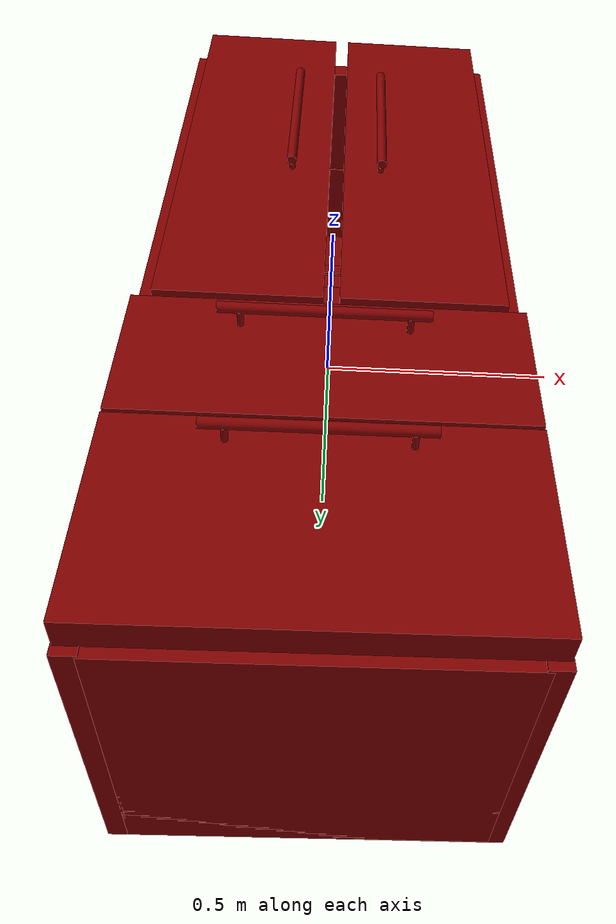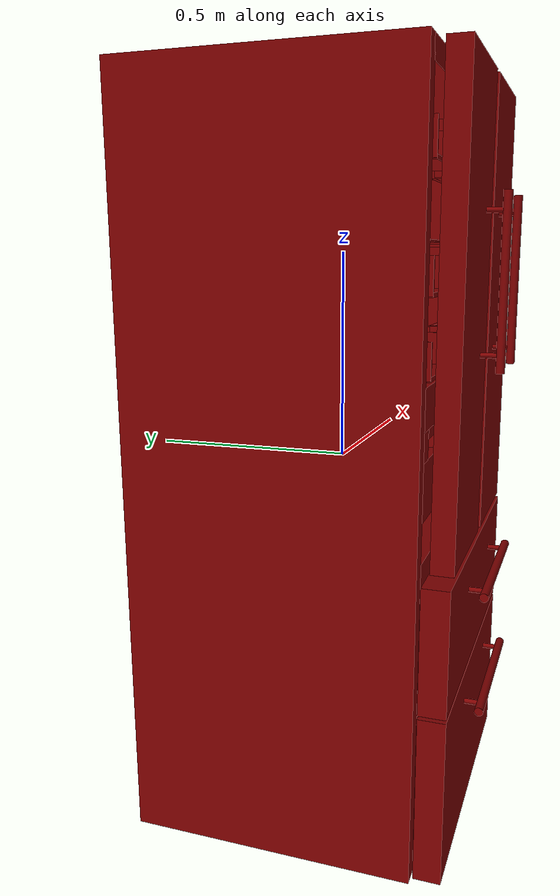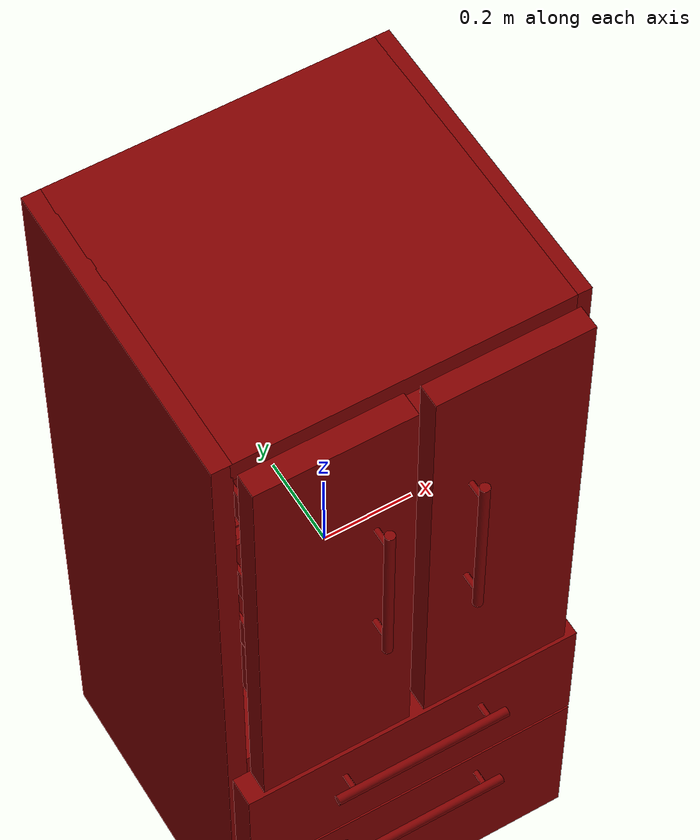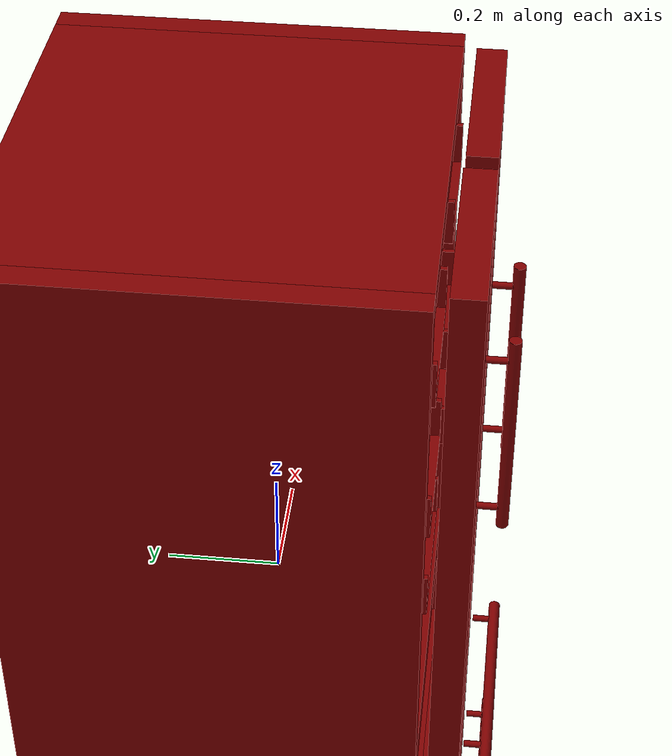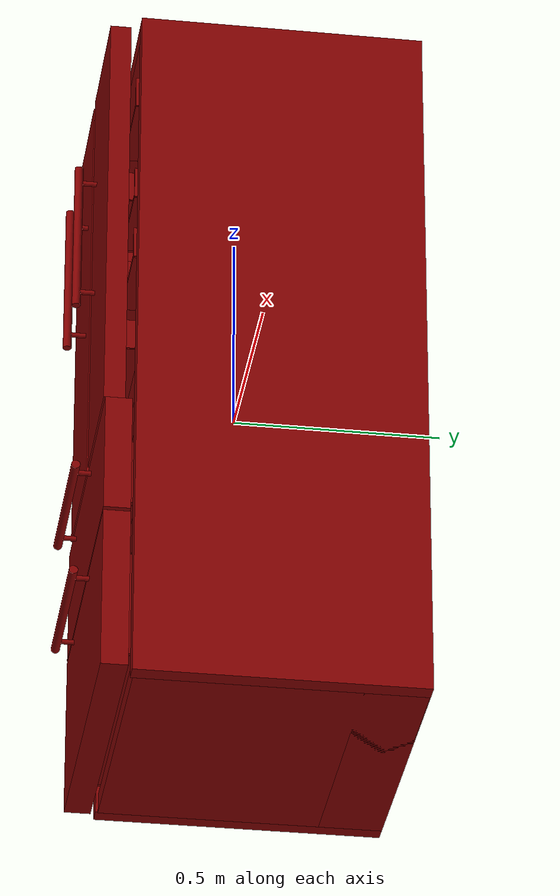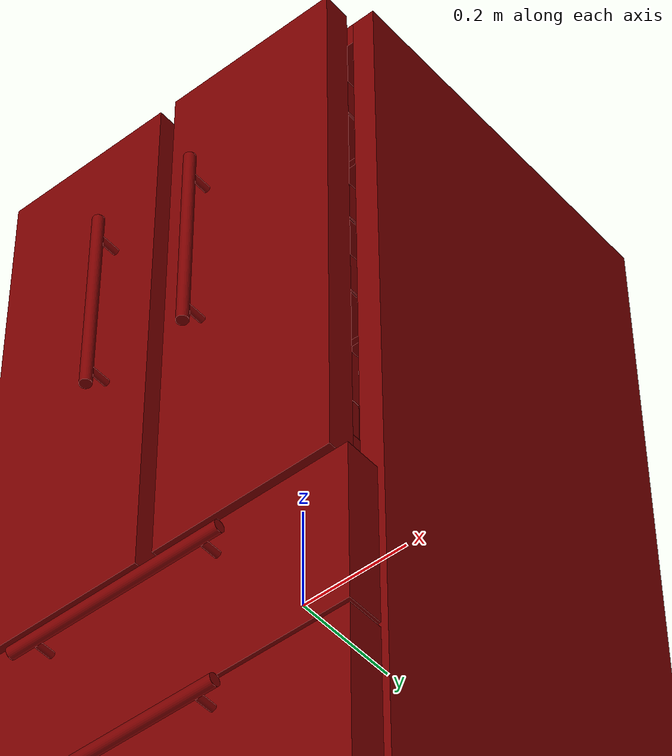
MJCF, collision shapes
<?xml version='1.0' encoding='UTF-8'?>
<mujoco model="model">
  <option timestep="0.002" gravity="0.0 0.0 -9.81"/>
  <compiler angle="radian"/>
  <asset>
    <mesh file="visuals/freezer0.obj" name="freezer0_vis"/>
    <mesh file="visuals/freezer1.obj" name="freezer1_vis"/>
    <mesh file="visuals/fridge_drawer0.obj" name="fridge_drawer0_vis"/>
    <mesh file="visuals/fridge_left_door.obj" name="fridge_left_door_vis"/>
    <mesh file="visuals/fridge_left_door_Clear.obj" name="fridge_left_door_Clear_vis"/>
    <mesh file="visuals/fridge_right_door.obj" name="fridge_right_door_vis"/>
    <mesh file="visuals/fridge_right_door_Clear.obj" name="fridge_right_door_Clear_vis"/>
    <mesh file="visuals/Body001.obj" name="Body001_vis"/>
    <mesh file="visuals/Body001_Clear.obj" name="Body001_Clear_vis"/>
    <texture file="visuals/T_BC001.png" name="Body001_material" type="2d"/>
    <material name="Body001_material" rgba="1 1 1 1.0" texture="Body001_material" shininess="0.141421377658844" specular="5"/>
    <texture file="visuals/T_BC001.png" name="freezer0_material" type="2d"/>
    <material name="freezer0_material" rgba="1 1 1 1.0" texture="freezer0_material" shininess="0.141421377658844" specular="5"/>
    <texture file="visuals/T_BC001.png" name="freezer1_material" type="2d"/>
    <material name="freezer1_material" rgba="1 1 1 1.0" texture="freezer1_material" shininess="0.141421377658844" specular="5"/>
    <texture file="visuals/T_BC001.png" name="fridge_drawer0_material" type="2d"/>
    <material name="fridge_drawer0_material" rgba="1 1 1 1.0" texture="fridge_drawer0_material" shininess="0.141421377658844" specular="5"/>
    <texture file="visuals/T_BC001.png" name="fridge_left_door_material" type="2d"/>
    <material name="fridge_left_door_material" rgba="1 1 1 1.0" texture="fridge_left_door_material" shininess="0.141421377658844" specular="5"/>
    <material name="fridge_left_door_Clear_material" rgba="0.5882353186607361 0.5882353186607361 0.5882353186607361 0.699999988079071" shininess="0.141421377658844" specular="0.3103448502657381"/>
    <texture file="visuals/T_BC001.png" name="fridge_right_door_material" type="2d"/>
    <material name="fridge_right_door_material" rgba="1 1 1 1.0" texture="fridge_right_door_material" shininess="0.141421377658844" specular="5"/>
    <material name="fridge_right_door_Clear_material" rgba="0.5882353186607361 0.5882353186607361 0.5882353186607361 0.699999988079071" shininess="0.141421377658844" specular="0.3103448502657381"/>
    <material name="Body001_Clear_material" rgba="0.5882353186607361 0.5882353186607361 0.5882353186607361 0.699999988079071" shininess="0.141421377658844" specular="0.3103448502657381"/>
  </asset>
  <default>
    <default class="visual">
      <geom conaffinity="0" contype="0" group="1" type="mesh"/>
    </default>
    <default class="collision">
      <geom group="0" rgba="0.5 0 0 0.5"/>
    </default>
    <default class="spawn">
      <geom group="0" rgba="1 1 1 0.5" contype="0" conaffinity="0"/>
      <site group="0" rgba="1 1 1 0.5"/>
    </default>
    <default class="region">
      <geom group="1" conaffinity="0" contype="0" rgba="0 1 0 0"/>
    </default>
  </default>
  <worldbody>
    <body>
      <body name="object">
        <geom mesh="Body001_vis" type="mesh" solimp="0.998 0.998 0.001" solref="0.001 1" friction="0.95 0.3 0.1" class="visual" material="Body001_material"/>
        <geom class="collision" type="box" pos="-0.36152868 0.06350708 0.00000004" size="0.020895235240459442 0.3423071503639221 0.8903815150260925" quat="1.0 0.0 0.0 0.0"/>
        <geom class="collision" type="box" pos="0.00344825 0.32958353 -0.02222050" size="0.3488938808441162 0.0762307196855545 0.8681609630584717" quat="1.0 0.0 0.0 0.0"/>
        <geom class="collision" type="box" pos="0.36138396 0.06350708 0.00000004" size="0.021036408841609955 0.3423071503639221 0.8903815150260925" quat="1.0 0.0 0.0 0.0"/>
        <geom class="collision" type="box" pos="0.00344825 0.06350708 0.86597389" size="0.3488938808441162 0.3423071503639221 0.02440752275288105" quat="1.0 0.0 0.0 0.0"/>
        <geom class="collision" type="box" pos="0.00344825 0.04003861 0.52877045" size="0.3488938808441162 0.22664538025856018 0.002512902719900012" quat="1.0 0.0 0.0 0.0"/>
        <geom class="collision" type="box" pos="0.00344825 0.04007300 0.19491111" size="0.3488938808441162 0.22667978703975677 0.0025128580164164305" quat="1.0 0.0 0.0 0.0"/>
        <geom class="collision" type="box" pos="0.00344825 0.06426792 -0.19484323" size="0.3488938808441162 0.34017038345336914 0.04420214518904686" quat="1.0 0.0 0.0 0.0"/>
        <geom class="collision" type="box" pos="0.00344825 0.06575833 -0.49197859" size="0.3488938808441162 0.3386799693107605 0.044169098138809204" quat="1.0 0.0 0.0 0.0"/>
        <geom class="collision" type="box" pos="0.00344825 0.06564751 -0.86693072" size="0.3488938808441162 0.33856913447380066 0.02345077507197857" quat="1.0 0.0 0.0 0.0"/>
        <geom class="collision" type="box" pos="0.33671196 0.10610183 0.18464710" size="0.015630198642611504 0.2983231842517853 0.003954083658754826" quat="1.0 0.0 0.0 0.0"/>
        <geom class="collision" type="box" pos="-0.33772982 0.10610183 0.18464710" size="0.015630198642611504 0.2983231842517853 0.003954083658754826" quat="1.0 0.0 0.0 0.0"/>
        <geom class="collision" type="box" pos="0.33671196 0.10606744 0.51825857" size="0.015630198642611504 0.29828882217407227 0.003954083658754826" quat="1.0 0.0 0.0 0.0"/>
        <geom class="collision" type="box" pos="-0.33772982 0.10606744 0.51825857" size="0.015630198642611504 0.29828882217407227 0.003954083658754826" quat="1.0 0.0 0.0 0.0"/>
        <body name="freezer0">
          <geom class="region" name="reg_freezer0" type="box" pos="-0.0004010500000000139 -0.044268064999999995 -0.6914894549999999" size="0.31518921 0.232760775 0.11752159499999998"/>
          <joint axis="0.0 -1.0 0.0" pos="0.00006209 -0.09910394 -0.67936808" limited="true" name="freezer0_door_joint" range="0.0 0.4" type="slide" damping="1" frictionloss="1" armature=".01" stiffness="0.05"/>
          <geom mesh="freezer0_vis" type="mesh" solimp="0.998 0.998 0.001" solref="0.001 1" friction="0.95 0.3 0.1" class="visual" material="freezer0_material"/>
          <geom class="collision" type="box" pos="0.00185137 -0.05699740 -0.82058871" size="0.32403823733329773 0.25006794929504395 0.006704666651785374" quat="1.0 0.0 0.0 0.0"/>
          <geom class="collision" type="box" pos="-0.32790802 -0.05699740 -0.69763881" size="0.007267894223332405 0.25006794929504395 0.12790319323539734" quat="1.0 0.0 0.0 0.0"/>
          <geom class="collision" type="box" pos="0.32664417 -0.05699740 -0.69763881" size="0.007267918903380632 0.25006794929504395 0.12790319323539734" quat="1.0 0.0 0.0 0.0"/>
          <geom class="collision" type="box" pos="-0.00046618 0.20033851 -0.69763875" size="0.3342480957508087 0.0072679584845900536 0.12790320813655853" quat="1.0 0.0 0.0 0.0"/>
          <geom class="collision" type="cylinder" pos="0.14917012 -0.37454274 -0.53792489" size="0.005949943792074919 0.01835515722632408" quat="0.7071067094802856 0.7071068286895752 0.0 0.0" name="freezer0_door_handle_2"/>
          <geom class="collision" type="cylinder" pos="-0.16305157 -0.37454274 -0.53792489" size="0.005949943792074919 0.01835515722632408" quat="0.7071067094802856 0.7071068286895752 0.0 0.0" name="freezer0_door_handle_1"/>
          <geom class="collision" type="cylinder" pos="-0.00903055 -0.39620686 -0.53743720" size="0.010426044464111328 0.1963866651058197" quat="0.7071068286895752 -0.0 0.7071067690849304 0.0" name="freezer0_door_handle_main"/>
          <geom class="collision" type="box" pos="-0.00018756 -0.31854659 -0.68015015" size="0.3769320249557495 0.031620871275663376 0.19834721088409424" quat="1.0 0.0 0.0 0.0" name="freezer0_door_main"/>
        </body>
        <body name="freezer1">
          <geom class="region" name="reg_freezer1" type="box" pos="0.000929490000000005 -0.031743035 -0.34979051" size="0.31874628000000005 0.244452955 0.06920779999999999"/>
          <joint axis="0.0 -1.0 0.0" pos="0.00006877 -0.08697075 -0.32639688" limited="true" name="freezer1_door_joint" range="0.0 0.4" type="slide" damping="1" frictionloss="1" armature=".01" stiffness="0.05"/>
          <geom mesh="freezer1_vis" type="mesh" solimp="0.998 0.998 0.001" solref="0.001 1" friction="0.95 0.3 0.1" class="visual" material="freezer1_material"/>
          <geom class="collision" type="box" pos="-0.00018756 -0.31854659 -0.32750550" size="0.3769320249557495 0.031620871275663376 0.1460256427526474" quat="1.0 0.0 0.0 0.0" name="freezer1_door_main"/>
          <geom class="collision" type="cylinder" pos="-0.00903055 -0.39620686 -0.25623894" size="0.010426044464111328 0.1963866651058197" quat="0.7071068286895752 -0.0 0.7071067690849304 0.0" name="freezer1_door_handle_main"/>
          <geom class="collision" type="cylinder" pos="-0.16305157 -0.37454274 -0.25672662" size="0.005949943792074919 0.01835515722632408" quat="0.7071067094802856 0.7071068286895752 0.0 0.0" name="freezer1_door_handle_1"/>
          <geom class="collision" type="cylinder" pos="0.14917012 -0.37454274 -0.25672662" size="0.005949943792074919 0.01835515722632408" quat="0.7071067094802856 0.7071068286895752 0.0 0.0" name="freezer1_door_handle_2"/>
          <geom class="collision" type="box" pos="0.00102142 0.22460476 -0.35598218" size="0.33801165223121643 0.007267870008945465 0.07988136261701584" quat="1.0 0.0 0.0 0.0"/>
          <geom class="collision" type="box" pos="0.33176519 -0.04486424 -0.35598218" size="0.007267908658832312 0.26220113039016724 0.07988136261701584" quat="1.0 0.0 0.0 0.0"/>
          <geom class="collision" type="box" pos="-0.32972236 -0.03759637 -0.35598224" size="0.007267878390848637 0.2694689929485321 0.07988130301237106" quat="1.0 0.0 0.0 0.0"/>
          <geom class="collision" type="box" pos="0.00102140 -0.04486425 -0.43048826" size="0.3234758675098419 0.26220110058784485 0.006704667117446661" quat="1.0 0.0 0.0 0.0"/>
        </body>
        <body name="fridge_drawer0">
          <geom class="region" name="reg_fridge_drawer0" type="box" pos="-0.001885219999999993 0.012568780000000002 0.026459695000000005" size="0.25517051 0.20365014 0.128449005"/>
          <joint axis="0.0 -1.0 0.0" pos="-0.00240436 0.00109385 0.03048827" limited="true" name="fridge_drawer0_joint" range="0.0 0.4" type="slide" damping="1" frictionloss="1" armature=".01" stiffness="0.05"/>
          <geom mesh="fridge_drawer0_vis" type="mesh" solimp="0.998 0.998 0.001" solref="0.001 1" friction="0.95 0.3 0.1" class="visual" material="fridge_drawer0_material"/>
          <geom class="collision" type="box" pos="-0.00150819 -0.21325396 0.14007315" size="0.276522159576416 0.015158834867179394 0.052633244544267654" quat="1.0 0.0 0.0 0.0"/>
          <geom class="collision" type="box" pos="-0.00205876 0.01185571 -0.11235271" size="0.26096388697624207 0.21130329370498657 0.004161866847425699" quat="1.0 0.0 0.0 0.0"/>
          <geom class="collision" type="box" pos="0.00061929 0.22685051 0.02384637" size="0.2611366808414459 0.00556489173322916 0.13526754081249237" quat="1.0 0.0 0.0 0.0"/>
          <geom class="collision" type="box" pos="-0.26857425 0.01427198 0.02384639" size="0.005672972183674574 0.2138131856918335 0.13526758551597595" quat="1.0 0.0 0.0 0.0"/>
          <geom class="collision" type="box" pos="0.26479937 0.01997739 0.02384639" size="0.005672989413142204 0.21951988339424133 0.13526760041713715" quat="1.0 0.0 0.0 0.0"/>
          <geom class="collision" type="box" pos="-0.00150819 -0.21256335 -0.06067566" size="0.2765568494796753 0.015851689502596855 0.07450446486473083" quat="1.0 0.0 0.0 0.0"/>
          <geom class="collision" type="box" pos="-0.16119037 -0.21325396 0.04907792" size="0.11688061058521271 0.015161125920712948 0.03786835819482803" quat="1.0 0.0 0.0 0.0"/>
          <geom class="collision" type="box" pos="0.18151224 -0.21325396 0.04907792" size="0.09242209047079086 0.015161196701228619 0.03786835819482803" quat="1.0 0.0 0.0 0.0"/>
          <geom class="collision" type="box" pos="0.02372111 -0.22590147 0.07462075" size="0.06702551245689392 0.0025141588412225246 0.012567557394504547" quat="1.0 0.0 0.0 0.0"/>
          <geom class="collision" type="box" pos="0.02372111 -0.19977981 0.04940321" size="0.06702577322721481 0.0013392593245953321 0.036608051508665085" quat="1.0 0.0 0.0 0.0"/>
        </body>
        <body name="fridge_left_door">
          <joint axis="0.0 0.0 -1.0" pos="-0.34021152 -0.31549117 0.36141729" limited="true" name="fridge_left_door_joint" range="0.0 1.5707963267948966" type="hinge" damping="1" frictionloss="1" armature=".01" stiffness="0.05"/>
          <geom mesh="fridge_left_door_vis" type="mesh" solimp="0.998 0.998 0.001" solref="0.001 1" friction="0.95 0.3 0.1" class="visual" material="fridge_left_door_material"/>
          <geom class="collision" type="box" pos="-0.17881559 -0.32434475 0.36097714" size="0.16400274634361267 0.02611648105084896 0.5244346261024475" quat="1.0 0.0 0.0 0.0" name="fridge_left_door_main"/>
          <geom class="collision" type="cylinder" pos="-0.09747735 -0.39538053 0.43168283" size="0.010426044464111328 0.1963866651058197" quat="1.0 0.0 0.0 0.0" name="fridge_left_door_handle_main"/>
          <geom class="collision" type="cylinder" pos="-0.09747735 -0.36845943 0.27425459" size="0.005949943792074919 0.01835515722632408" quat="0.7071067094802856 0.7071068286895752 0.0 0.0" name="fridge_left_door_handle_2"/>
          <geom class="collision" type="cylinder" pos="-0.09747735 -0.36897135 0.58653194" size="0.005949943792074919 0.01835515722632408" quat="0.7071067094802856 0.7071068286895752 0.0 0.0" name="fridge_left_door_handle_1"/>
          <geom class="collision" type="box" pos="-0.20528962 -0.19411224 0.28012776" size="0.11674992740154266 0.005236892960965633 0.03987608104944229" quat="1.0 0.0 0.0 0.0"/>
          <geom class="collision" type="box" pos="-0.20528962 -0.19411224 0.44946790" size="0.11674992740154266 0.005236881319433451 0.03987594693899155" quat="1.0 0.0 0.0 0.0"/>
          <geom class="collision" type="box" pos="-0.20528962 -0.19411224 0.71063554" size="0.11674992740154266 0.005236869677901268 0.0398758128285408" quat="1.0 0.0 0.0 0.0"/>
          <geom class="collision" type="box" pos="-0.20528962 -0.24102378 0.24523449" size="0.11674989759922028 0.04351219907402992 0.004980413243174553" quat="1.0 0.0 0.0 0.0"/>
          <geom class="collision" type="box" pos="-0.20528962 -0.24102378 0.41457462" size="0.11674989759922028 0.04351218789815903 0.004980411380529404" quat="1.0 0.0 0.0 0.0"/>
          <geom class="collision" type="box" pos="-0.20528962 -0.24102378 0.67574227" size="0.11674989759922028 0.04351217672228813 0.004980409983545542" quat="1.0 0.0 0.0 0.0"/>
          <geom class="collision" type="box" pos="-0.31979684 -0.24102378 0.28214341" size="0.004439220298081636 0.043512146919965744 0.0396893136203289" quat="1.0 0.0 0.0 0.0"/>
          <geom class="collision" type="box" pos="-0.31979684 -0.24102378 0.45148355" size="0.004439220298081636 0.04351213574409485 0.03968930244445801" quat="1.0 0.0 0.0 0.0"/>
          <geom class="collision" type="box" pos="-0.31979684 -0.24102378 0.71265119" size="0.004439220298081636 0.04351212456822395 0.03968929126858711" quat="1.0 0.0 0.0 0.0"/>
          <geom class="collision" type="box" pos="-0.09023948 -0.24102378 0.28214341" size="0.0044392189010977745 0.043512094765901566 0.03968925401568413" quat="1.0 0.0 0.0 0.0"/>
          <geom class="collision" type="box" pos="-0.09023948 -0.24102378 0.45148355" size="0.0044392189010977745 0.04351208359003067 0.03968924283981323" quat="1.0 0.0 0.0 0.0"/>
          <geom class="collision" type="box" pos="-0.09023948 -0.24102378 0.71265119" size="0.0044392189010977745 0.043512072414159775 0.03968923166394234" quat="1.0 0.0 0.0 0.0"/>
          <body name="fridge_left_door_Clear">
            <geom mesh="fridge_left_door_Clear_vis" type="mesh" solimp="0.998 0.998 0.001" solref="0.001 1" friction="0.95 0.3 0.1" class="visual" material="fridge_left_door_Clear_material"/>
            <geom class="collision" type="box" pos="-0.20528962 -0.19411224 0.28012776" size="0.11674992740154266 0.005236892960965633 0.03987608104944229" quat="1.0 0.0 0.0 0.0"/>
            <geom class="collision" type="box" pos="-0.20528962 -0.19411224 0.44946790" size="0.11674992740154266 0.005236881319433451 0.03987594693899155" quat="1.0 0.0 0.0 0.0"/>
            <geom class="collision" type="box" pos="-0.20528962 -0.19411224 0.71063554" size="0.11674992740154266 0.005236869677901268 0.0398758128285408" quat="1.0 0.0 0.0 0.0"/>
            <geom class="collision" type="box" pos="-0.20528962 -0.24102378 0.24523449" size="0.11674989759922028 0.04351219907402992 0.004980413243174553" quat="1.0 0.0 0.0 0.0"/>
            <geom class="collision" type="box" pos="-0.20528962 -0.24102378 0.41457462" size="0.11674989759922028 0.04351218789815903 0.004980411380529404" quat="1.0 0.0 0.0 0.0"/>
            <geom class="collision" type="box" pos="-0.20528962 -0.24102378 0.67574227" size="0.11674989759922028 0.04351217672228813 0.004980409983545542" quat="1.0 0.0 0.0 0.0"/>
            <geom class="collision" type="box" pos="-0.31979684 -0.24102378 0.28214341" size="0.004439220298081636 0.043512146919965744 0.0396893136203289" quat="1.0 0.0 0.0 0.0"/>
            <geom class="collision" type="box" pos="-0.31979684 -0.24102378 0.45148355" size="0.004439220298081636 0.04351213574409485 0.03968930244445801" quat="1.0 0.0 0.0 0.0"/>
            <geom class="collision" type="box" pos="-0.31979684 -0.24102378 0.71265119" size="0.004439220298081636 0.04351212456822395 0.03968929126858711" quat="1.0 0.0 0.0 0.0"/>
            <geom class="collision" type="box" pos="-0.09023948 -0.24102378 0.28214341" size="0.0044392189010977745 0.043512094765901566 0.03968925401568413" quat="1.0 0.0 0.0 0.0"/>
            <geom class="collision" type="box" pos="-0.09023948 -0.24102378 0.45148355" size="0.0044392189010977745 0.04351208359003067 0.03968924283981323" quat="1.0 0.0 0.0 0.0"/>
            <geom class="collision" type="box" pos="-0.09023948 -0.24102378 0.71265119" size="0.0044392189010977745 0.043512072414159775 0.03968923166394234" quat="1.0 0.0 0.0 0.0"/>
          </body>
        </body>
        <body name="fridge_right_door">
          <joint axis="0.0 0.0 1.0" pos="0.34136297 -0.31549567 0.36141729" limited="true" name="fridge_right_door_joint" range="0.0 1.5707963267948966" type="hinge" damping="1" frictionloss="1" armature=".01" stiffness="0.05"/>
          <geom mesh="fridge_right_door_vis" type="mesh" solimp="0.998 0.998 0.001" solref="0.001 1" friction="0.95 0.3 0.1" class="visual" material="fridge_right_door_material"/>
          <geom class="collision" type="cylinder" pos="0.09913540 -0.37053636 0.58653194" size="0.005949943792074919 0.01835515722632408" quat="0.7071067094802856 0.7071068286895752 0.0 0.0" name="fridge_right_door_handle_1"/>
          <geom class="collision" type="cylinder" pos="0.09913540 -0.37002444 0.27425459" size="0.005949943792074919 0.01835515722632408" quat="0.7071067094802856 0.7071068286895752 0.0 0.0" name="fridge_right_door_handle_2"/>
          <geom class="collision" type="cylinder" pos="0.09913540 -0.39538053 0.43168283" size="0.010426044464111328 0.1963866651058197" quat="1.0 0.0 0.0 0.0" name="fridge_right_door_handle_main"/>
          <geom class="collision" type="box" pos="0.18147057 -0.32554206 0.36097714" size="0.16381490230560303 0.025374827906489372 0.5244172215461731" quat="1.0 0.0 0.0 0.0" name="fridge_right_door_main"/>
          <geom class="collision" type="box" pos="0.20601495 -0.19411224 0.71063554" size="0.11674992740154266 0.005237078294157982 0.03987818583846092" quat="1.0 0.0 0.0 0.0"/>
          <geom class="collision" type="box" pos="0.20601495 -0.24102378 0.67574227" size="0.11674989759922028 0.04351241886615753 0.004980443511158228" quat="1.0 0.0 0.0 0.0"/>
          <geom class="collision" type="box" pos="0.09150772 -0.24102378 0.71265119" size="0.004439220298081636 0.04351240023970604 0.039689596742391586" quat="1.0 0.0 0.0 0.0"/>
          <geom class="collision" type="box" pos="0.32106508 -0.24102378 0.71265119" size="0.0044392189010977745 0.04351238161325455 0.039689574390649796" quat="1.0 0.0 0.0 0.0"/>
          <geom class="collision" type="box" pos="0.20601495 -0.19411224 0.44946790" size="0.11674992740154266 0.005237031728029251 0.039877645671367645" quat="1.0 0.0 0.0 0.0"/>
          <geom class="collision" type="box" pos="0.20601495 -0.24102378 0.41457462" size="0.11674989759922028 0.04351237788796425 0.004980437457561493" quat="1.0 0.0 0.0 0.0"/>
          <geom class="collision" type="box" pos="0.09150772 -0.24102378 0.45148355" size="0.004439220298081636 0.04351235553622246 0.03968954458832741" quat="1.0 0.0 0.0 0.0"/>
          <geom class="collision" type="box" pos="0.32106508 -0.24102378 0.45148355" size="0.0044392189010977745 0.043512336909770966 0.039689525961875916" quat="1.0 0.0 0.0 0.0"/>
          <geom class="collision" type="box" pos="0.20601495 -0.19411224 0.28012776" size="0.11674992740154266 0.00523698516190052 0.03987710922956467" quat="1.0 0.0 0.0 0.0"/>
          <geom class="collision" type="box" pos="0.20601495 -0.24102378 0.24523449" size="0.11674989759922028 0.04351233318448067 0.004980431403964758" quat="1.0 0.0 0.0 0.0"/>
          <geom class="collision" type="box" pos="0.09150772 -0.24102378 0.28214341" size="0.004439220298081636 0.043512310832738876 0.03968949615955353" quat="1.0 0.0 0.0 0.0"/>
          <geom class="collision" type="box" pos="0.32106508 -0.24102378 0.28214341" size="0.0044392189010977745 0.043512292206287384 0.039689477533102036" quat="1.0 0.0 0.0 0.0"/>
          <body name="fridge_right_door_Clear">
            <geom mesh="fridge_right_door_Clear_vis" type="mesh" solimp="0.998 0.998 0.001" solref="0.001 1" friction="0.95 0.3 0.1" class="visual" material="fridge_right_door_Clear_material"/>
            <geom class="collision" type="box" pos="0.20601495 -0.19411224 0.71063554" size="0.11674992740154266 0.005237078294157982 0.03987818583846092" quat="1.0 0.0 0.0 0.0"/>
            <geom class="collision" type="box" pos="0.20601495 -0.24102378 0.67574227" size="0.11674989759922028 0.04351241886615753 0.004980443511158228" quat="1.0 0.0 0.0 0.0"/>
            <geom class="collision" type="box" pos="0.09150772 -0.24102378 0.71265119" size="0.004439220298081636 0.04351240023970604 0.039689596742391586" quat="1.0 0.0 0.0 0.0"/>
            <geom class="collision" type="box" pos="0.32106508 -0.24102378 0.71265119" size="0.0044392189010977745 0.04351238161325455 0.039689574390649796" quat="1.0 0.0 0.0 0.0"/>
            <geom class="collision" type="box" pos="0.20601495 -0.19411224 0.44946790" size="0.11674992740154266 0.005237031728029251 0.039877645671367645" quat="1.0 0.0 0.0 0.0"/>
            <geom class="collision" type="box" pos="0.20601495 -0.24102378 0.41457462" size="0.11674989759922028 0.04351237788796425 0.004980437457561493" quat="1.0 0.0 0.0 0.0"/>
            <geom class="collision" type="box" pos="0.09150772 -0.24102378 0.45148355" size="0.004439220298081636 0.04351235553622246 0.03968954458832741" quat="1.0 0.0 0.0 0.0"/>
            <geom class="collision" type="box" pos="0.32106508 -0.24102378 0.45148355" size="0.0044392189010977745 0.043512336909770966 0.039689525961875916" quat="1.0 0.0 0.0 0.0"/>
            <geom class="collision" type="box" pos="0.20601495 -0.19411224 0.28012776" size="0.11674992740154266 0.00523698516190052 0.03987710922956467" quat="1.0 0.0 0.0 0.0"/>
            <geom class="collision" type="box" pos="0.20601495 -0.24102378 0.24523449" size="0.11674989759922028 0.04351233318448067 0.004980431403964758" quat="1.0 0.0 0.0 0.0"/>
            <geom class="collision" type="box" pos="0.09150772 -0.24102378 0.28214341" size="0.004439220298081636 0.043512310832738876 0.03968949615955353" quat="1.0 0.0 0.0 0.0"/>
            <geom class="collision" type="box" pos="0.32106508 -0.24102378 0.28214341" size="0.0044392189010977745 0.043512292206287384 0.039689477533102036" quat="1.0 0.0 0.0 0.0"/>
          </body>
        </body>
        <body name="Body001_Clear">
          <geom mesh="Body001_Clear_vis" type="mesh" solimp="0.998 0.998 0.001" solref="0.001 1" friction="0.95 0.3 0.1" class="visual" material="Body001_Clear_material"/>
          <geom class="collision" type="box" pos="0.00344825 0.04003861 0.52877045" size="0.3488938808441162 0.22664538025856018 0.002512902719900012" quat="1.0 0.0 0.0 0.0"/>
          <geom class="collision" type="box" pos="0.00344825 0.04007300 0.19491111" size="0.3488938808441162 0.22667978703975677 0.0025128580164164305" quat="1.0 0.0 0.0 0.0"/>
        </body>
        <geom class="region" name="reg_fridge_shelf0" type="box" pos="-0.0004652599999999951 0.03378534500000001 0.361844875" size="0.31973527 0.211190895 0.15984258499999998"/>
        <geom class="region" name="reg_fridge_shelf1" type="box" pos="0.002121075 0.03378534500000001 0.685455235" size="0.33725367500000003 0.211190895 0.14943705499999999"/>
        <geom class="region" name="reg_main" type="box" pos="-1.7599999999895477e-06 0.02212077500000001 0.0" size="0.38342215 0.38469345499999996 0.89138146"/>
      </body>
    </body>
  </worldbody>
  <actuator>
    <motor name="freezer0_door_joint_actuator" joint="freezer0_door_joint" gear="50"/>
    <motor name="freezer1_door_joint_actuator" joint="freezer1_door_joint" gear="50"/>
    <motor name="fridge_drawer0_joint_actuator" joint="fridge_drawer0_joint" gear="50"/>
    <motor name="fridge_left_door_joint_actuator" joint="fridge_left_door_joint" gear="50"/>
    <motor name="fridge_right_door_joint_actuator" joint="fridge_right_door_joint" gear="50"/>
  </actuator>
</mujoco>
